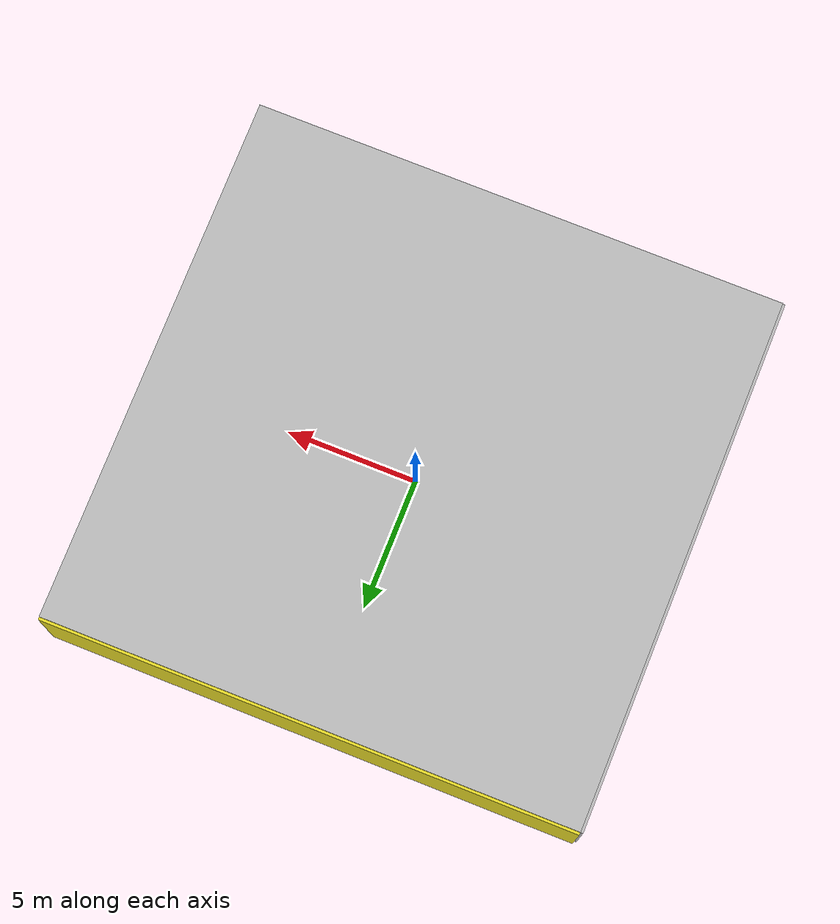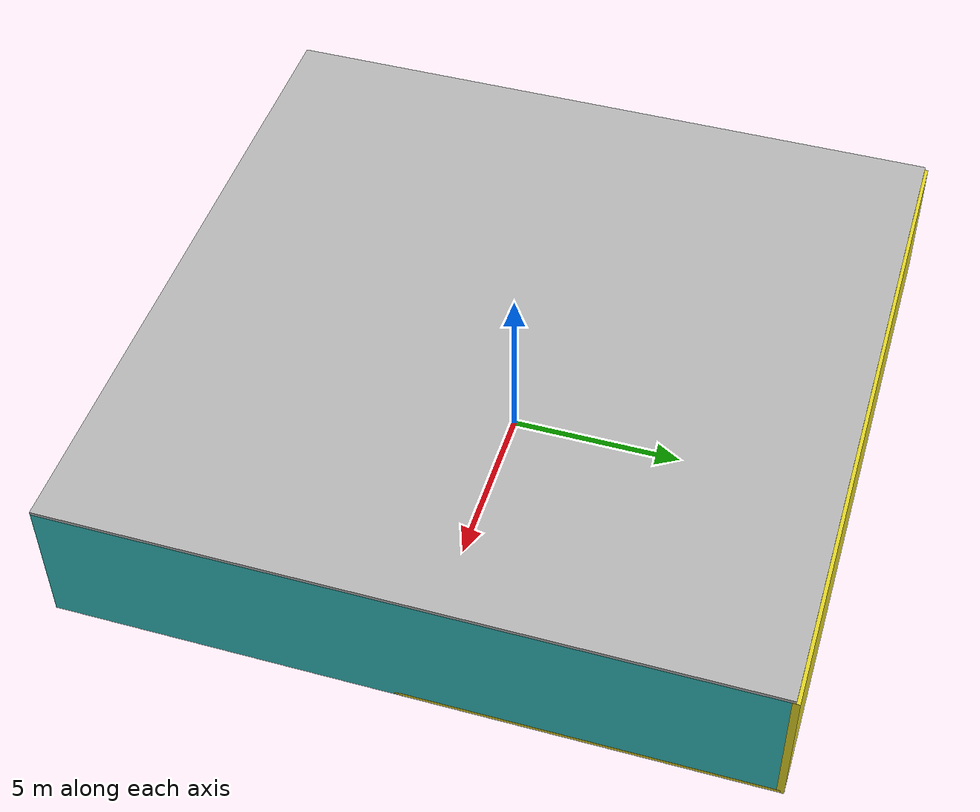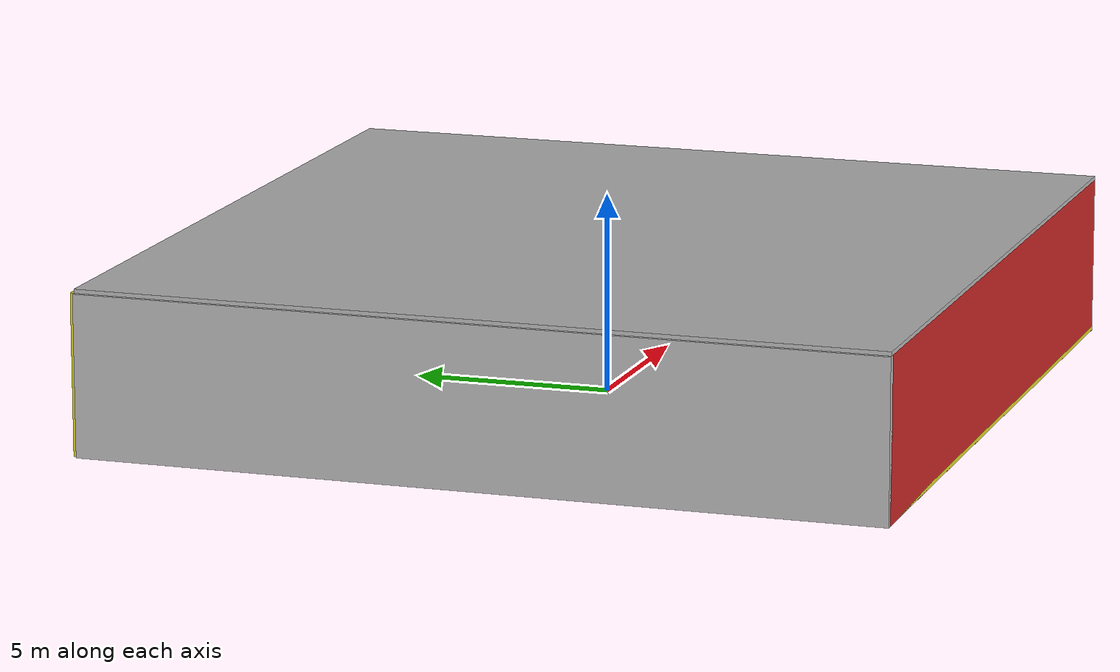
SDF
<sdf version="1.4">
 <world name="default">
  <physics type="ode">
   <max_step_size>0.001</max_step_size>
   <real_time_factor>1</real_time_factor>
   <real_time_update_rate>1000</real_time_update_rate>
   <gravity>0 0 -9.8</gravity>
  </physics>
  <scene><ambient>0.4 0.4 0.4 1</ambient><background>0.7 0.7 0.7 1</background><shadows>1</shadows></scene>
  <model name="Surrounding">
   <static>1</static>
   <link name="Ceiling">
    <collision name="Ceiling_Collision"><geometry><box><size>20 20 0.1</size></box></geometry></collision>
    <visual name="Ceiling_Visual">
     <geometry><box><size>20 20 0.1</size></box></geometry>
     <material>
      <script><uri>file://media/materials/scripts/gazebo.material</uri><name>Gazebo/PioneerBody</name></script>
     </material>
    </visual>
    <pose>0 0 4.05 0 0 0</pose>
   </link>
   <link name="Wall_South">
    <collision name="Wall_South_Collision">
     <geometry><box><size>20 0 4</size></box></geometry>
     <pose>0 0 2 0 -0 0</pose>
    </collision>
    <visual name="Wall_South_Visual">
     <pose>0 0 2 0 -0 0</pose>
     <geometry><box><size>20 0 4</size></box></geometry>
     <material>
      <script><uri>file://media/materials/scripts/gazebo.material</uri><name>Gazebo/RedGlow</name></script>
     </material>
    </visual>
    <velocity_decay><linear>0</linear><angular>0</angular></velocity_decay>
    <pose>0 -10 0 0 -0 0</pose>
   </link>
   <link name="Wall_East">
    <collision name="Wall_21_Collision">
     <geometry><box><size>20 0 4</size></box></geometry>
     <pose>0 0 2 0 -0 0</pose>
    </collision>
    <visual name="Wall_21_Visual">
     <pose>0 0 2 0 -0 0</pose>
     <geometry><box><size>20 0 4</size></box></geometry>
     <material>
      <script><uri>file://media/materials/scripts/gazebo.material</uri><name>Gazebo/Turquoise</name></script>
     </material>
    </visual>
    <velocity_decay><linear>0</linear><angular>0</angular></velocity_decay>
    <pose>10 0 0 0 -0 1.5708</pose>
   </link>
   <link name="Wall_North">
    <collision name="Wall_22_Collision">
     <geometry><box><size>20 0.2 4</size></box></geometry>
     <pose>0 0 2 0 -0 0</pose>
    </collision>
    <visual name="Wall_22_Visual">
     <pose>0 0 2 0 -0 0</pose>
     <geometry><box><size>20 0.2 4</size></box></geometry>
     <material>
      <script><uri>file://media/materials/scripts/gazebo.material</uri><name>Gazebo/YellowGlow</name></script>
     </material>
    </visual>
    <velocity_decay><linear>0</linear><angular>0</angular></velocity_decay>
    <pose>0 10 0 0 -0 0</pose>
   </link>
   <link name="Wall_West">
    <collision name="Wall_23_Collision">
     <geometry><box><size>20 0.2 4</size></box></geometry>
     <pose>0 0 2 0 -0 0</pose>
    </collision>
    <visual name="Wall_23_Visual">
     <pose>0 0 2 0 -0 0</pose>
     <geometry><box><size>20 0.2 4</size></box></geometry>
     <material>
      <script><uri>file://media/materials/scripts/gazebo.material</uri><name>Gazebo/JointAnchor</name></script>
     </material>
    </visual>
    <velocity_decay><linear>0</linear><angular>0</angular></velocity_decay>
    <pose>-10 0 0 0 0 -1.5708</pose>
   </link>
   <link name="Ground_link">
    <collision name="collision">
     <pose>0 0 .05 0 -0 0</pose>
     <geometry><box><size>20 20 0.1</size></box></geometry>
    </collision>
    <visual name="visual">
     <pose>0 0 .05 0 -0 0</pose>
     <geometry><box><size>20 20 0.1</size></box></geometry>
     <material>
      <script><uri>file://media/materials/scripts/gazebo.material</uri><name>Gazebo/YellowGlow</name></script>
     </material>
    </visual>
   </link>
   <static>1</static>
  </model>
  <spherical_coordinates>
   <surface_model>EARTH_WGS84</surface_model>
   <latitude_deg>0</latitude_deg>
   <longitude_deg>0</longitude_deg>
   <elevation>0</elevation>
   <heading_deg>0</heading_deg>
  </spherical_coordinates>
  <light name="lightball_0" type="diffuse">
   <diffuse>0.8 0.8 0.8 1</diffuse>
   <specular>0.2 0.2 0.2 1</specular>
   <attenuation>
    <range>100</range>
    <constant>0.7</constant>
    <linear>0.01</linear>
    <quadratic>0.001</quadratic>
   </attenuation>
   <direction>-0.5 0.1 -0.9</direction>
   <pose>8.36437029465 4.33981632427 2.26066158324 0 0 0</pose>
  </light>
  <light name="lightball_1" type="diffuse">
   <diffuse>0.8 0.8 0.8 1</diffuse>
   <specular>0.2 0.2 0.2 1</specular>
   <attenuation>
    <range>100</range>
    <constant>0.7</constant>
    <linear>0.01</linear>
    <quadratic>0.001</quadratic>
   </attenuation>
   <direction>-0.5 0.1 -0.9</direction>
   <pose>8.71999082268 -3.8920762983 1.14139265442 0 0 0</pose>
  </light>
  <light name="lightball_2" type="diffuse">
   <diffuse>0.8 0.8 0.8 1</diffuse>
   <specular>0.2 0.2 0.2 1</specular>
   <attenuation>
    <range>100</range>
    <constant>0.7</constant>
    <linear>0.01</linear>
    <quadratic>0.001</quadratic>
   </attenuation>
   <direction>-0.5 0.1 -0.9</direction>
   <pose>5.57192236021 1.92194700476 0.554635571181 0 0 0</pose>
  </light>
  <light name="lightball_3" type="diffuse">
   <diffuse>0.8 0.8 0.8 1</diffuse>
   <specular>0.2 0.2 0.2 1</specular>
   <attenuation>
    <range>100</range>
    <constant>0.7</constant>
    <linear>0.01</linear>
    <quadratic>0.001</quadratic>
   </attenuation>
   <direction>-0.5 0.1 -0.9</direction>
   <pose>-0.51243967739 4.27690257083 0.657370979769 0 0 0</pose>
  </light>
  <light name="lightball_4" type="diffuse">
   <diffuse>0.8 0.8 0.8 1</diffuse>
   <specular>0.2 0.2 0.2 1</specular>
   <attenuation>
    <range>100</range>
    <constant>0.7</constant>
    <linear>0.01</linear>
    <quadratic>0.001</quadratic>
   </attenuation>
   <direction>-0.5 0.1 -0.9</direction>
   <pose>8.96611450683 8.55561032304 1.85537976835 0 0 0</pose>
  </light>
  <light name="lightball_5" type="diffuse">
   <diffuse>0.8 0.8 0.8 1</diffuse>
   <specular>0.2 0.2 0.2 1</specular>
   <attenuation>
    <range>100</range>
    <constant>0.7</constant>
    <linear>0.01</linear>
    <quadratic>0.001</quadratic>
   </attenuation>
   <direction>-0.5 0.1 -0.9</direction>
   <pose>1.65783283924 -1.15143044689 1.31853502217 0 0 0</pose>
  </light>
  <light name="lightball_6" type="diffuse">
   <diffuse>0.8 0.8 0.8 1</diffuse>
   <specular>0.2 0.2 0.2 1</specular>
   <attenuation>
    <range>100</range>
    <constant>0.7</constant>
    <linear>0.01</linear>
    <quadratic>0.001</quadratic>
   </attenuation>
   <direction>-0.5 0.1 -0.9</direction>
   <pose>-8.02785419846 -4.52824211581 2.90722235645 0 0 0</pose>
  </light>
  <light name="lightball_7" type="diffuse">
   <diffuse>0.8 0.8 0.8 1</diffuse>
   <specular>0.2 0.2 0.2 1</specular>
   <attenuation>
    <range>100</range>
    <constant>0.7</constant>
    <linear>0.01</linear>
    <quadratic>0.001</quadratic>
   </attenuation>
   <direction>-0.5 0.1 -0.9</direction>
   <pose>-5.85661264624 0.167838019897 1.53482770328 0 0 0</pose>
  </light>
  <light name="lightball_8" type="diffuse">
   <diffuse>0.8 0.8 0.8 1</diffuse>
   <specular>0.2 0.2 0.2 1</specular>
   <attenuation>
    <range>100</range>
    <constant>0.7</constant>
    <linear>0.01</linear>
    <quadratic>0.001</quadratic>
   </attenuation>
   <direction>-0.5 0.1 -0.9</direction>
   <pose>-2.55643344813 3.25144656022 2.77569991424 0 0 0</pose>
  </light>
  <light name="lightball_9" type="diffuse">
   <diffuse>0.8 0.8 0.8 1</diffuse>
   <specular>0.2 0.2 0.2 1</specular>
   <attenuation>
    <range>100</range>
    <constant>0.7</constant>
    <linear>0.01</linear>
    <quadratic>0.001</quadratic>
   </attenuation>
   <direction>-0.5 0.1 -0.9</direction>
   <pose>8.26725884313 -9.12988023852 1.62230608294 0 0 0</pose>
  </light>
  <light name="lightball_10" type="diffuse">
   <diffuse>0.8 0.8 0.8 1</diffuse>
   <specular>0.2 0.2 0.2 1</specular>
   <attenuation>
    <range>100</range>
    <constant>0.7</constant>
    <linear>0.01</linear>
    <quadratic>0.001</quadratic>
   </attenuation>
   <direction>-0.5 0.1 -0.9</direction>
   <pose>-9.4136814287 -5.01389244967 2.54812365572 0 0 0</pose>
  </light>
  <light name="lightball_11" type="diffuse">
   <diffuse>0.8 0.8 0.8 1</diffuse>
   <specular>0.2 0.2 0.2 1</specular>
   <attenuation>
    <range>100</range>
    <constant>0.7</constant>
    <linear>0.01</linear>
    <quadratic>0.001</quadratic>
   </attenuation>
   <direction>-0.5 0.1 -0.9</direction>
   <pose>3.83583023222 6.38072030703 1.54252712499 0 0 0</pose>
  </light>
  <light name="lightball_12" type="diffuse">
   <diffuse>0.8 0.8 0.8 1</diffuse>
   <specular>0.2 0.2 0.2 1</specular>
   <attenuation>
    <range>100</range>
    <constant>0.7</constant>
    <linear>0.01</linear>
    <quadratic>0.001</quadratic>
   </attenuation>
   <direction>-0.5 0.1 -0.9</direction>
   <pose>-5.2770329778 -1.74332863536 1.16944161941 0 0 0</pose>
  </light>
  <include>
   <uri>model://robocup_3Dsim_goal</uri>
   <pose>-7.6025128206 -3.76359337824 0 0 0 2.32271962157</pose>
  </include>
  <include>
   <uri>model://textured_shapes</uri>
   <pose>-6.91787185398 0.875536722638 0 0 0 0.333957667594</pose>
  </include>
  <include>
   <uri>model://robocup_3Dsim_goal</uri>
   <pose>1.04890506108 -7.16921590368 0 0 0 1.76141970405</pose>
  </include>
  <include>
   <uri>model://textured_shapes</uri>
   <pose>4.60456602709 -7.18424304033 0 0 0 0.773648553946</pose>
  </include>
  <include>
   <uri>model://robocup_3Dsim_goal</uri>
   <pose>7.21461889421 1.1016430772 0 0 0 1.50538365645</pose>
  </include>
 </world>
</sdf>

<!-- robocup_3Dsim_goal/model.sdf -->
<sdf version="1.5">
  <model name="robocup_3d_goal">
    <static>true</static>
    <link name="left_post">
      <pose>0 1.05 0.45 0 0 0</pose>
      <collision name="collision">
        <geometry>
          <cylinder>
            <radius>0.05</radius>
            <length>0.9</length>
          </cylinder>
        </geometry>
      </collision>
      <visual name="visual">
        <geometry>
          <cylinder>
            <radius>0.05</radius>
            <length>0.9</length>
          </cylinder>
        </geometry>
        <material>
          <script>
            <uri>file://media/materials/scripts/gazebo.material</uri>
            <name>Gazebo/ZincYellow</name>
          </script>
        </material>
      </visual>
    </link>
    <link name="left_support_horiz_lower">
      <pose>0.30 1.05 0.01 0 0 0</pose>
      <collision name="collision">
        <geometry>
          <box>
            <size>0.50 0.02 0.02</size>
          </box>
        </geometry>
      </collision>
      <visual name="visual">
        <geometry>
          <box>
            <size>0.50 0.02 0.02</size>
          </box>
        </geometry>
        <material>
          <script>
            <uri>file://media/materials/scripts/gazebo.material</uri>
            <name>Gazebo/White</name>
          </script>
        </material>
      </visual>
    </link>
    <link name="left_support_horiz_upper">
      <pose>0.30 1.05 0.79 0 0 0</pose>
      <collision name="collision">
        <geometry>
          <box>
            <size>0.50 0.02 0.02</size>
          </box>
        </geometry>
      </collision>
      <visual name="visual">
        <geometry>
          <box>
            <size>0.50 0.02 0.02</size>
          </box>
        </geometry>
        <material>
          <script>
            <uri>file://media/materials/scripts/gazebo.material</uri>
            <name>Gazebo/White</name>
          </script>
        </material>
      </visual>
    </link>
    <link name="left_support_vertical">
      <pose>0.56 1.05 0.4 0 1.5708 0</pose>
      <collision name="collision">
        <geometry>
          <box>
            <size>0.80 0.02 0.02</size>
          </box>
        </geometry>
      </collision>
      <visual name="visual">
        <geometry>
          <box>
            <size>0.80 0.02 0.02</size>
          </box>
        </geometry>
        <material>
          <script>
            <uri>file://media/materials/scripts/gazebo.material</uri>
            <name>Gazebo/White</name>
          </script>
        </material>
      </visual>
    </link>
    <link name="right_support_horiz_lower">
      <pose>0.30 -1.05 0.01 0 0 0</pose>
      <collision name="collision">
        <geometry>
          <box>
            <size>0.50 0.02 0.02</size>
          </box>
        </geometry>
      </collision>
      <visual name="visual">
        <geometry>
          <box>
            <size>0.50 0.02 0.02</size>
          </box>
        </geometry>
        <material>
          <script>
            <uri>file://media/materials/scripts/gazebo.material</uri>
            <name>Gazebo/White</name>
          </script>
        </material>
      </visual>
    </link>
    <link name="right_support_horiz_upper">
      <pose>0.30 -1.05 0.79 0 0 0</pose>
      <collision name="collision">
        <geometry>
          <box>
            <size>0.50 0.02 0.02</size>
          </box>
        </geometry>
      </collision>
      <visual name="visual">
        <geometry>
          <box>
            <size>0.50 0.02 0.02</size>
          </box>
        </geometry>
        <material>
          <script>
            <uri>file://media/materials/scripts/gazebo.material</uri>
            <name>Gazebo/White</name>
          </script>
        </material>
      </visual>
    </link>
    <link name="right_support_vertical">
      <pose>0.56 -1.05 0.4 0 1.5708 0</pose>
      <collision name="collision">
        <geometry>
          <box>
            <size>0.80 0.02 0.02</size>
          </box>
        </geometry>
      </collision>
      <visual name="visual">
        <geometry>
          <box>
            <size>0.80 0.02 0.02</size>
          </box>
        </geometry>
        <material>
          <script>
            <uri>file://media/materials/scripts/gazebo.material</uri>
            <name>Gazebo/White</name>
          </script>
        </material>
      </visual>
    </link>
    <link name="center_support_horiz_lower">
      <pose>0.56 0 0.01 0 1.5708 0</pose>
      <collision name="collision">
        <geometry>
          <box>
            <size>0.02 2.08 0.02</size>
          </box>
        </geometry>
      </collision>
      <visual name="visual">
        <geometry>
          <box>
            <size>0.02 2.08 0.02</size>
          </box>
        </geometry>
        <material>
          <script>
            <uri>file://media/materials/scripts/gazebo.material</uri>
            <name>Gazebo/White</name>
          </script>
        </material>
      </visual>
    </link>
    <link name="center_support_horiz_upper">
      <pose>0.56 0 0.79 0 1.5708 0</pose>
      <collision name="collision">
        <geometry>
          <box>
            <size>0.02 2.08 0.02</size>
          </box>
        </geometry>
      </collision>
      <visual name="visual">
        <geometry>
          <box>
            <size>0.02 2.08 0.02</size>
          </box>
        </geometry>
        <material>
          <script>
            <uri>file://media/materials/scripts/gazebo.material</uri>
            <name>Gazebo/White</name>
          </script>
        </material>
      </visual>
    </link>
    <link name="right_post">
      <pose>0 -1.05 0.45 0 0 0</pose>
      <collision name="collision">
        <geometry>
          <cylinder>
            <radius>0.05</radius>
            <length>0.9</length>
          </cylinder>
        </geometry>
      </collision>
      <visual name="visual">
        <geometry>
          <cylinder>
            <radius>0.05</radius>
            <length>0.9</length>
          </cylinder>
        </geometry>
        <material>
          <script>
            <uri>file://media/materials/scripts/gazebo.material</uri>
            <name>Gazebo/ZincYellow</name>
          </script>
        </material>
      </visual>
    </link>
    <link name="crossbar">
      <pose>0 0 0.85 1.57 1.57 0</pose>
      <collision name="collision">
        <geometry>
          <cylinder>
            <radius>0.05</radius>
            <length>2.0</length>
          </cylinder>
        </geometry>
      </collision>
      <visual name="visual">
        <geometry>
          <cylinder>
            <radius>0.05</radius>
            <length>2.0</length>
          </cylinder>
        </geometry>
        <material>
          <script>
            <uri>file://media/materials/scripts/gazebo.material</uri>
            <name>Gazebo/ZincYellow</name>
          </script>
        </material>
      </visual>
    </link>
    <link name="center_net">
      <pose>0.56 0 0.40 0 0 0</pose>
      <collision name="collision">
        <geometry>
          <box>
            <size>0.01 2.1 0.80</size>
          </box>
        </geometry>
      </collision>
      <visual name="visual">
        <geometry>
          <box>
            <size>0.01 2.1 0.80</size>
          </box>
        </geometry>
        <material>
          <script>
            <uri>model://../model_source/models/robocup09_spl_field/materials/scripts/</uri>
            <uri>model://../model_source/models/robocup09_spl_field/materials/textures/</uri>
            <name>RoboCup/Net</name>
          </script>
        </material>
      </visual>
    </link>
    <link name="left_net">
      <pose>0.30 1.05 0.40 0 0 0</pose>
      <collision name="collision">
        <geometry>
          <box>
            <size>0.50 0.01 0.76</size>
          </box>
        </geometry>
      </collision>
      <visual name="visual">
        <geometry>
          <box>
            <size>0.50 0.01 0.76</size>
          </box>
        </geometry>
        <material>
          <script>
            <uri>model://../model_source/models/robocup09_spl_field/materials/scripts/</uri>
            <uri>model://../model_source/models/robocup09_spl_field/materials/textures/</uri>
            <name>RoboCup/Net</name>
          </script>
        </material>
      </visual>
    </link>
    <link name="right_net">
      <pose>0.30 -1.05 0.40 0 0 0</pose>
      <collision name="collision">
        <geometry>
          <box>
            <size>0.50 0.01 0.76</size>
          </box>
        </geometry>
      </collision>
      <visual name="visual">
        <geometry>
          <box>
            <size>0.50 0.01 0.76</size>
          </box>
        </geometry>
        <material>
          <script>
            <uri>model://../model_source/models/robocup09_spl_field/materials/scripts/</uri>
            <uri>model://../model_source/models/robocup09_spl_field/materials/textures/</uri>
            <name>RoboCup/Net</name>
          </script>
        </material>
      </visual>
    </link>
  </model>
</sdf>

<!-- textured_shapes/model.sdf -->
<sdf version="1.6">
  <model name="textured_shapes">
    <pose>0 0 0.5 0 0 0</pose>
    <link name="box">
      <pose>0 -1.5 0 0 0 0</pose>
      <collision name="collision">
        <geometry>
          <box>
            <size>1 1 1</size>
          </box>
        </geometry>
      </collision>
      <visual name="visual">
        <geometry>
          <box>
            <size>1 1 1</size>
          </box>
        </geometry>
        <material>
          <script>
            <uri>model://../model_source/models/textured_shapes/materials/scripts</uri>
            <uri>model://../model_source/models/textured_shapes/materials/textures</uri>
            <name>TexturedShape/Squares</name>
          </script>
        </material>
      </visual>
    </link>
    <link name="sphere">
      <collision name="collision">
        <geometry>
          <sphere>
            <radius>0.5</radius>
          </sphere>
        </geometry>
      </collision>
      <visual name="visual">
        <geometry>
          <sphere>
            <radius>0.5</radius>
          </sphere>
        </geometry>
        <material>
          <script>
            <uri>model://../model_source/models/textured_shapes/materials/scripts</uri>
            <uri>model://../model_source/models/textured_shapes/materials/textures</uri>
            <name>TexturedShape/Squares</name>
          </script>
        </material>
      </visual>
    </link>
    <link name="cylinder">
      <pose>0 1.5 0 0 0 0</pose>
      <collision name="collision">
        <geometry>
          <cylinder>
            <radius>0.5</radius>
            <length>1</length>
          </cylinder>
        </geometry>
      </collision>
      <visual name="visual">
        <geometry>
          <cylinder>
            <radius>0.5</radius>
            <length>1</length>
          </cylinder>
        </geometry>
        <material>
          <script>
            <uri>model://../model_source/models/textured_shapes/materials/scripts</uri>
            <uri>model://../model_source/models/textured_shapes/materials/textures</uri>
            <name>TexturedShape/Squares</name>
          </script>
        </material>
      </visual>
    </link>
  </model>
</sdf>
